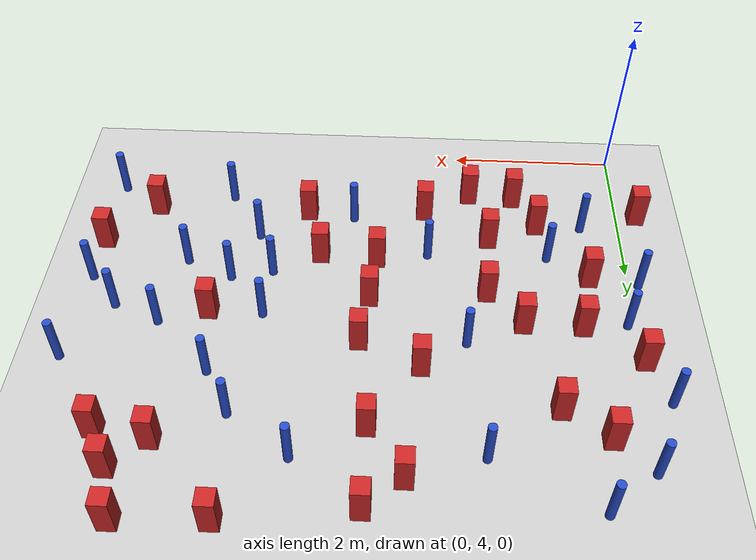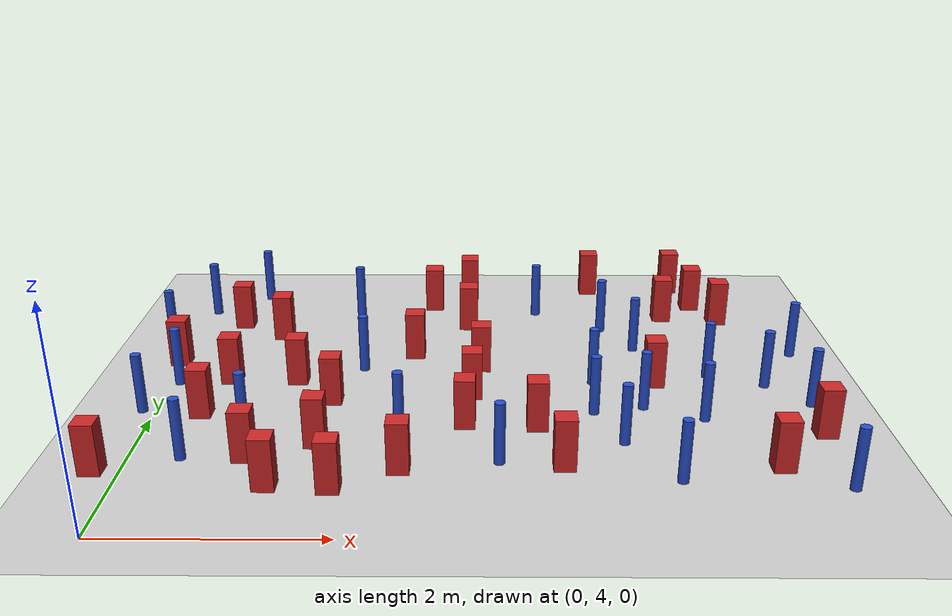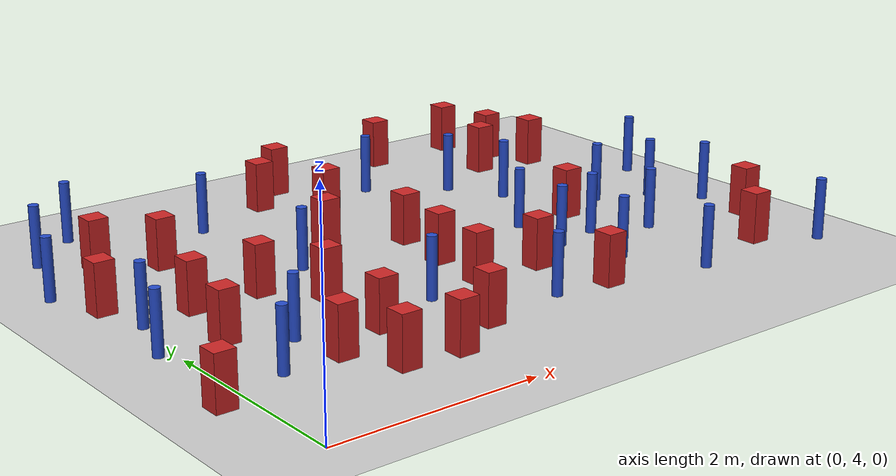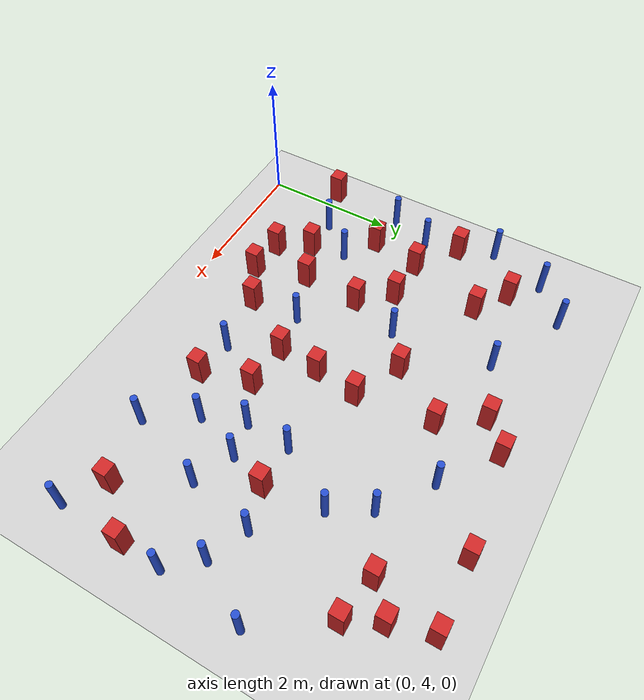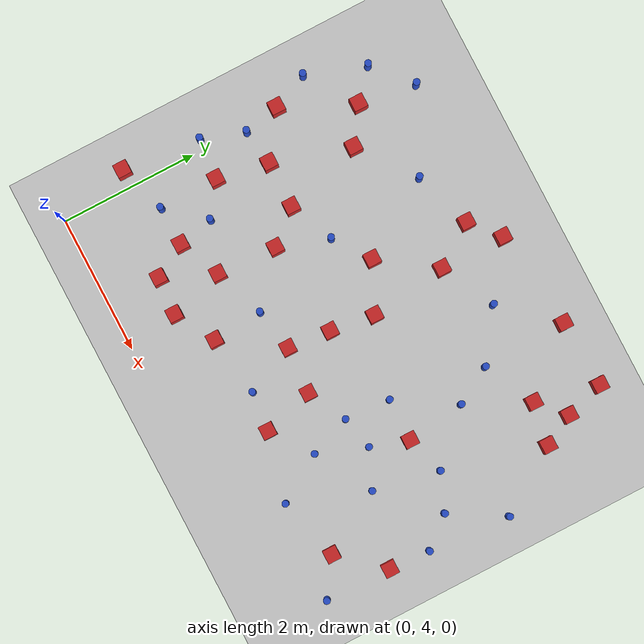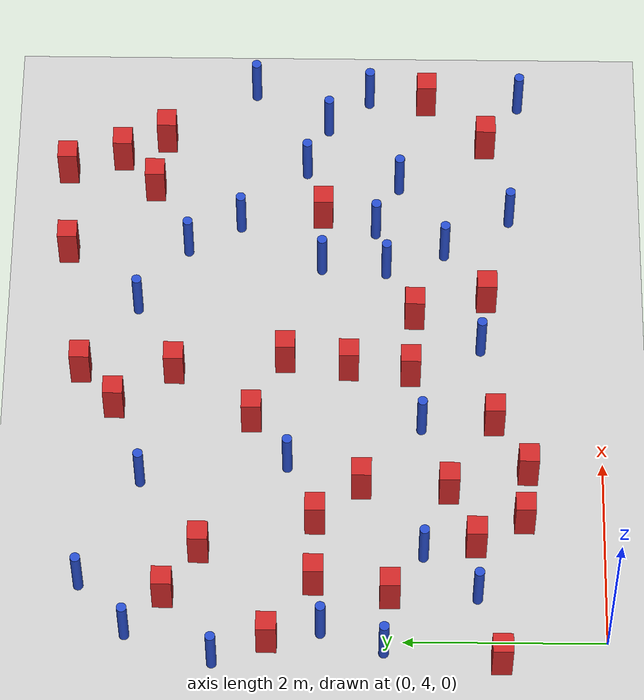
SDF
<sdf version="1.6">
 <world name="default">
  <model name="ground_plane">
   <static>1</static>
   <link name="link">
    <collision name="collision">
     <geometry><plane><normal>0 0 1</normal><size>100 100</size></plane></geometry>
     <surface><friction><ode><mu>100</mu><mu2>50</mu2></ode></friction></surface>
    </collision>
    <visual name="visual">
     <cast_shadows>0</cast_shadows>
     <geometry><plane><normal>0 0 1</normal><size>100 100</size></plane></geometry>
     <material>
      <ambient>1.0 1.0 1.0 1.0</ambient>
      <diffuse>0.8 0.8 0.8 1.0</diffuse>
      <specular>0.01 0.01 0.01 1.000000</specular>
     </material>
    </visual>
   </link>
  </model>
  <model name="square_post_obstacle0">
   <static>true</static>
   <pose>2.59690286933 8.90812959721 -4.36207812815e-07 3.75137919937e-06 9.77721102514e-07 2.47381364184e-05</pose>
   <link name="link">
    <pose>0 0 0.25 0 -0 0</pose>
    <inertial>
     <mass>100</mass>
     <inertia>
      <ixx>0.166667</ixx>
      <ixy>0</ixy>
      <ixz>0</ixz>
      <iyy>0.166667</iyy>
      <iyz>0</iyz>
      <izz>0.166667</izz>
     </inertia>
    </inertial>
    <collision name="collision"><geometry><box><size>.2 .2 .5</size></box></geometry></collision>
    <visual name="visual">
     <geometry><box><size>.2 .2 .5</size></box></geometry>
     <material>
      <script><name>Gazebo/Red</name><uri>file://media/materials/scripts/gazebo.material</uri></script>
     </material>
    </visual>
   </link>
  </model>
  <model name="pole_obstacle10">
   <static>true</static>
   <pose>4.79318812608 7.67508169887 -3.09024884793e-07 -7.19054271911e-07 -2.1131507516e-07 -1.93935509277e-07</pose>
   <link name="link">
    <pose>0 0 0.3 0 -0 0</pose>
    <inertial>
     <mass>1</mass>
     <inertia><ixx>0.145833</ixx><ixy>0</ixy><ixz>0</ixz><iyy>0.145833</iyy><iyz>0</iyz><izz>0.125</izz></inertia>
    </inertial>
    <collision name="collision">
     <geometry><cylinder><radius>0.05</radius><length>.6</length></cylinder></geometry>
    </collision>
    <visual name="visual">
     <geometry><cylinder><radius>0.05</radius><length>.6</length></cylinder></geometry>
     <material>
      <script><name>Gazebo/Blue</name><uri>file://media/materials/scripts/gazebo.material</uri></script>
     </material>
    </visual>
   </link>
  </model>
  <model name="pole_obstacle12">
   <static>true</static>
   <pose>1.75246085546 8.61980835545 -3.09024884793e-07 -7.19054271912e-07 -2.1131507515e-07 -1.93935509273e-07</pose>
   <link name="link">
    <pose>0 0 0.3 0 -0 0</pose>
    <inertial>
     <mass>1</mass>
     <inertia><ixx>0.145833</ixx><ixy>0</ixy><ixz>0</ixz><iyy>0.145833</iyy><iyz>0</iyz><izz>0.125</izz></inertia>
    </inertial>
    <collision name="collision">
     <geometry><cylinder><radius>0.05</radius><length>.6</length></cylinder></geometry>
    </collision>
    <visual name="visual">
     <geometry><cylinder><radius>0.05</radius><length>.6</length></cylinder></geometry>
     <material>
      <script><name>Gazebo/Blue</name><uri>file://media/materials/scripts/gazebo.material</uri></script>
     </material>
    </visual>
   </link>
  </model>
  <model name="pole_obstacle23">
   <static>true</static>
   <pose>1.93177337349 7.15243569661 -3.09024884793e-07 -7.19054271912e-07 -2.11315075134e-07 -1.93935509265e-07</pose>
   <link name="link">
    <pose>0 0 0.3 0 -0 0</pose>
    <inertial>
     <mass>1</mass>
     <inertia><ixx>0.145833</ixx><ixy>0</ixy><ixz>0</ixz><iyy>0.145833</iyy><iyz>0</iyz><izz>0.125</izz></inertia>
    </inertial>
    <collision name="collision">
     <geometry><cylinder><radius>0.05</radius><length>.6</length></cylinder></geometry>
    </collision>
    <visual name="visual">
     <geometry><cylinder><radius>0.05</radius><length>.6</length></cylinder></geometry>
     <material>
      <script><name>Gazebo/Blue</name><uri>file://media/materials/scripts/gazebo.material</uri></script>
     </material>
    </visual>
   </link>
  </model>
  <model name="square_post_obstacle18">
   <static>true</static>
   <pose>0.465041118365 6.12694422763 -4.36207812815e-07 3.75137919937e-06 9.77721102514e-07 2.47381364184e-05</pose>
   <link name="link">
    <pose>0 0 0.25 0 -0 0</pose>
    <inertial>
     <mass>100</mass>
     <inertia>
      <ixx>0.166667</ixx>
      <ixy>0</ixy>
      <ixz>0</ixz>
      <iyy>0.166667</iyy>
      <iyz>0</iyz>
      <izz>0.166667</izz>
     </inertia>
    </inertial>
    <collision name="collision"><geometry><box><size>.2 .2 .5</size></box></geometry></collision>
    <visual name="visual">
     <geometry><box><size>.2 .2 .5</size></box></geometry>
     <material>
      <script><name>Gazebo/Red</name><uri>file://media/materials/scripts/gazebo.material</uri></script>
     </material>
    </visual>
   </link>
  </model>
  <model name="pole_obstacle28">
   <static>true</static>
   <pose>-0.249616091385 7.8533554535 -3.09024884793e-07 -7.19054271912e-07 -2.11315075131e-07 -1.93935509264e-07</pose>
   <link name="link">
    <pose>0 0 0.3 0 -0 0</pose>
    <inertial>
     <mass>1</mass>
     <inertia><ixx>0.145833</ixx><ixy>0</ixy><ixz>0</ixz><iyy>0.145833</iyy><iyz>0</iyz><izz>0.125</izz></inertia>
    </inertial>
    <collision name="collision">
     <geometry><cylinder><radius>0.05</radius><length>.6</length></cylinder></geometry>
    </collision>
    <visual name="visual">
     <geometry><cylinder><radius>0.05</radius><length>.6</length></cylinder></geometry>
     <material>
      <script><name>Gazebo/Blue</name><uri>file://media/materials/scripts/gazebo.material</uri></script>
     </material>
    </visual>
   </link>
  </model>
  <model name="square_post_obstacle22">
   <static>true</static>
   <pose>3.01061490572 9.26128157257 -4.36207812815e-07 3.75137919937e-06 9.77721102514e-07 2.47381364184e-05</pose>
   <link name="link">
    <pose>0 0 0.25 0 -0 0</pose>
    <inertial>
     <mass>100</mass>
     <inertia>
      <ixx>0.166667</ixx>
      <ixy>0</ixy>
      <ixz>0</ixz>
      <iyy>0.166667</iyy>
      <iyz>0</iyz>
      <izz>0.166667</izz>
     </inertia>
    </inertial>
    <collision name="collision"><geometry><box><size>.2 .2 .5</size></box></geometry></collision>
    <visual name="visual">
     <geometry><box><size>.2 .2 .5</size></box></geometry>
     <material>
      <script><name>Gazebo/Red</name><uri>file://media/materials/scripts/gazebo.material</uri></script>
     </material>
    </visual>
   </link>
  </model>
  <model name="square_post_obstacle23">
   <static>true</static>
   <pose>-0.239136232068 5.04131277427 -4.36207812815e-07 3.75137919937e-06 9.77721102514e-07 2.47381364184e-05</pose>
   <link name="link">
    <pose>0 0 0.25 0 -0 0</pose>
    <inertial>
     <mass>100</mass>
     <inertia>
      <ixx>0.166667</ixx>
      <ixy>0</ixy>
      <ixz>0</ixz>
      <iyy>0.166667</iyy>
      <iyz>0</iyz>
      <izz>0.166667</izz>
     </inertia>
    </inertial>
    <collision name="collision"><geometry><box><size>.2 .2 .5</size></box></geometry></collision>
    <visual name="visual">
     <geometry><box><size>.2 .2 .5</size></box></geometry>
     <material>
      <script><name>Gazebo/Red</name><uri>file://media/materials/scripts/gazebo.material</uri></script>
     </material>
    </visual>
   </link>
  </model>
  <model name="square_post_obstacle24">
   <static>true</static>
   <pose>1.28586750141 6.87032121208 -4.36207812815e-07 3.75137919937e-06 9.77721102514e-07 2.47381364184e-05</pose>
   <link name="link">
    <pose>0 0 0.25 0 -0 0</pose>
    <inertial>
     <mass>100</mass>
     <inertia>
      <ixx>0.166667</ixx>
      <ixy>0</ixy>
      <ixz>0</ixz>
      <iyy>0.166667</iyy>
      <iyz>0</iyz>
      <izz>0.166667</izz>
     </inertia>
    </inertial>
    <collision name="collision"><geometry><box><size>.2 .2 .5</size></box></geometry></collision>
    <visual name="visual">
     <geometry><box><size>.2 .2 .5</size></box></geometry>
     <material>
      <script><name>Gazebo/Red</name><uri>file://media/materials/scripts/gazebo.material</uri></script>
     </material>
    </visual>
   </link>
  </model>
  <model name="pole_obstacle36">
   <static>true</static>
   <pose>5.47010037709 6.99825661843 -3.09024884793e-07 -7.19054271911e-07 -2.1131507516e-07 -1.93935509277e-07</pose>
   <link name="link">
    <pose>0 0 0.3 0 -0 0</pose>
    <inertial>
     <mass>1</mass>
     <inertia><ixx>0.145833</ixx><ixy>0</ixy><ixz>0</ixz><iyy>0.145833</iyy><iyz>0</iyz><izz>0.125</izz></inertia>
    </inertial>
    <collision name="collision">
     <geometry><cylinder><radius>0.05</radius><length>.6</length></cylinder></geometry>
    </collision>
    <visual name="visual">
     <geometry><cylinder><radius>0.05</radius><length>.6</length></cylinder></geometry>
     <material>
      <script><name>Gazebo/Blue</name><uri>file://media/materials/scripts/gazebo.material</uri></script>
     </material>
    </visual>
   </link>
  </model>
  <model name="square_post_obstacle31">
   <static>true</static>
   <pose>3.88257624322 5.14773019331 -4.36207812815e-07 3.75137919937e-06 9.77721102514e-07 2.47381364184e-05</pose>
   <link name="link">
    <pose>0 0 0.25 0 -0 0</pose>
    <inertial>
     <mass>100</mass>
     <inertia>
      <ixx>0.166667</ixx>
      <ixy>0</ixy>
      <ixz>0</ixz>
      <iyy>0.166667</iyy>
      <iyz>0</iyz>
      <izz>0.166667</izz>
     </inertia>
    </inertial>
    <collision name="collision"><geometry><box><size>.2 .2 .5</size></box></geometry></collision>
    <visual name="visual">
     <geometry><box><size>.2 .2 .5</size></box></geometry>
     <material>
      <script><name>Gazebo/Red</name><uri>file://media/materials/scripts/gazebo.material</uri></script>
     </material>
    </visual>
   </link>
  </model>
  <model name="square_post_obstacle39">
   <static>true</static>
   <pose>5.22579633937 8.57681700439 -4.36207812815e-07 3.75137919937e-06 9.77721102514e-07 2.47381364184e-05</pose>
   <link name="link">
    <pose>0 0 0.25 0 -0 0</pose>
    <inertial>
     <mass>100</mass>
     <inertia>
      <ixx>0.166667</ixx>
      <ixy>0</ixy>
      <ixz>0</ixz>
      <iyy>0.166667</iyy>
      <iyz>0</iyz>
      <izz>0.166667</izz>
     </inertia>
    </inertial>
    <collision name="collision"><geometry><box><size>.2 .2 .5</size></box></geometry></collision>
    <visual name="visual">
     <geometry><box><size>.2 .2 .5</size></box></geometry>
     <material>
      <script><name>Gazebo/Red</name><uri>file://media/materials/scripts/gazebo.material</uri></script>
     </material>
    </visual>
   </link>
  </model>
  <model name="pole_obstacle50">
   <static>true</static>
   <pose>0.473915840547 5.26440534672 -3.09024884793e-07 -7.19054271912e-07 -2.11315075128e-07 -1.9393550926e-07</pose>
   <link name="link">
    <pose>0 0 0.3 0 -0 0</pose>
    <inertial>
     <mass>1</mass>
     <inertia><ixx>0.145833</ixx><ixy>0</ixy><ixz>0</ixz><iyy>0.145833</iyy><iyz>0</iyz><izz>0.125</izz></inertia>
    </inertial>
    <collision name="collision">
     <geometry><cylinder><radius>0.05</radius><length>.6</length></cylinder></geometry>
    </collision>
    <visual name="visual">
     <geometry><cylinder><radius>0.05</radius><length>.6</length></cylinder></geometry>
     <material>
      <script><name>Gazebo/Blue</name><uri>file://media/materials/scripts/gazebo.material</uri></script>
     </material>
    </visual>
   </link>
  </model>
  <model name="pole_obstacle51">
   <static>true</static>
   <pose>0.58635771725 9.18341403361 -3.09024884793e-07 -7.19054271911e-07 -2.11315075158e-07 -1.93935509277e-07</pose>
   <link name="link">
    <pose>0 0 0.3 0 -0 0</pose>
    <inertial>
     <mass>1</mass>
     <inertia><ixx>0.145833</ixx><ixy>0</ixy><ixz>0</ixz><iyy>0.145833</iyy><iyz>0</iyz><izz>0.125</izz></inertia>
    </inertial>
    <collision name="collision">
     <geometry><cylinder><radius>0.05</radius><length>.6</length></cylinder></geometry>
    </collision>
    <visual name="visual">
     <geometry><cylinder><radius>0.05</radius><length>.6</length></cylinder></geometry>
     <material>
      <script><name>Gazebo/Blue</name><uri>file://media/materials/scripts/gazebo.material</uri></script>
     </material>
    </visual>
   </link>
  </model>
  <model name="square_post_obstacle43">
   <static>true</static>
   <pose>3.00421147811 8.31483494489 -4.36207812815e-07 3.75137919937e-06 9.77721102514e-07 2.47381364184e-05</pose>
   <link name="link">
    <pose>0 0 0.25 0 -0 0</pose>
    <inertial>
     <mass>100</mass>
     <inertia>
      <ixx>0.166667</ixx>
      <ixy>0</ixy>
      <ixz>0</ixz>
      <iyy>0.166667</iyy>
      <iyz>0</iyz>
      <izz>0.166667</izz>
     </inertia>
    </inertial>
    <collision name="collision"><geometry><box><size>.2 .2 .5</size></box></geometry></collision>
    <visual name="visual">
     <geometry><box><size>.2 .2 .5</size></box></geometry>
     <material>
      <script><name>Gazebo/Red</name><uri>file://media/materials/scripts/gazebo.material</uri></script>
     </material>
    </visual>
   </link>
  </model>
  <model name="pole_obstacle57">
   <static>true</static>
   <pose>0.932787360123 5.79484764104 -3.09024884793e-07 -7.19054271912e-07 -2.11315075129e-07 -1.93935509261e-07</pose>
   <link name="link">
    <pose>0 0 0.3 0 -0 0</pose>
    <inertial>
     <mass>1</mass>
     <inertia><ixx>0.145833</ixx><ixy>0</ixy><ixz>0</ixz><iyy>0.145833</iyy><iyz>0</iyz><izz>0.125</izz></inertia>
    </inertial>
    <collision name="collision">
     <geometry><cylinder><radius>0.05</radius><length>.6</length></cylinder></geometry>
    </collision>
    <visual name="visual">
     <geometry><cylinder><radius>0.05</radius><length>.6</length></cylinder></geometry>
     <material>
      <script><name>Gazebo/Blue</name><uri>file://media/materials/scripts/gazebo.material</uri></script>
     </material>
    </visual>
   </link>
  </model>
  <model name="square_post_obstacle44">
   <static>true</static>
   <pose>3.14680511482 7.19189590408 -4.36207812815e-07 3.75137919937e-06 9.77721102514e-07 2.47381364184e-05</pose>
   <link name="link">
    <pose>0 0 0.25 0 -0 0</pose>
    <inertial>
     <mass>100</mass>
     <inertia>
      <ixx>0.166667</ixx>
      <ixy>0</ixy>
      <ixz>0</ixz>
      <iyy>0.166667</iyy>
      <iyz>0</iyz>
      <izz>0.166667</izz>
     </inertia>
    </inertial>
    <collision name="collision"><geometry><box><size>.2 .2 .5</size></box></geometry></collision>
    <visual name="visual">
     <geometry><box><size>.2 .2 .5</size></box></geometry>
     <material>
      <script><name>Gazebo/Red</name><uri>file://media/materials/scripts/gazebo.material</uri></script>
     </material>
    </visual>
   </link>
  </model>
  <model name="pole_obstacle61">
   <static>true</static>
   <pose>4.23558222568 6.17096233819 -3.09024884793e-07 -7.19054271911e-07 -2.1131507516e-07 -1.93935509277e-07</pose>
   <link name="link">
    <pose>0 0 0.3 0 -0 0</pose>
    <inertial>
     <mass>1</mass>
     <inertia><ixx>0.145833</ixx><ixy>0</ixy><ixz>0</ixz><iyy>0.145833</iyy><iyz>0</iyz><izz>0.125</izz></inertia>
    </inertial>
    <collision name="collision">
     <geometry><cylinder><radius>0.05</radius><length>.6</length></cylinder></geometry>
    </collision>
    <visual name="visual">
     <geometry><cylinder><radius>0.05</radius><length>.6</length></cylinder></geometry>
     <material>
      <script><name>Gazebo/Blue</name><uri>file://media/materials/scripts/gazebo.material</uri></script>
     </material>
    </visual>
   </link>
  </model>
  <model name="pole_obstacle62">
   <static>true</static>
   <pose>-0.123834747399 6.18465258813 -3.09024884793e-07 -7.19054271912e-07 -2.11315075136e-07 -1.93935509266e-07</pose>
   <link name="link">
    <pose>0 0 0.3 0 -0 0</pose>
    <inertial>
     <mass>1</mass>
     <inertia><ixx>0.145833</ixx><ixy>0</ixy><ixz>0</ixz><iyy>0.145833</iyy><iyz>0</iyz><izz>0.125</izz></inertia>
    </inertial>
    <collision name="collision">
     <geometry><cylinder><radius>0.05</radius><length>.6</length></cylinder></geometry>
    </collision>
    <visual name="visual">
     <geometry><cylinder><radius>0.05</radius><length>.6</length></cylinder></geometry>
     <material>
      <script><name>Gazebo/Blue</name><uri>file://media/materials/scripts/gazebo.material</uri></script>
     </material>
    </visual>
   </link>
  </model>
  <model name="square_post_obstacle48">
   <static>true</static>
   <pose>2.44587616517 7.52039390079 -4.36207812815e-07 3.75137919937e-06 9.77721102514e-07 2.47381364184e-05</pose>
   <link name="link">
    <pose>0 0 0.25 0 -0 0</pose>
    <inertial>
     <mass>100</mass>
     <inertia>
      <ixx>0.166667</ixx>
      <ixy>0</ixy>
      <ixz>0</ixz>
      <iyy>0.166667</iyy>
      <iyz>0</iyz>
      <izz>0.166667</izz>
     </inertia>
    </inertial>
    <collision name="collision"><geometry><box><size>.2 .2 .5</size></box></geometry></collision>
    <visual name="visual">
     <geometry><box><size>.2 .2 .5</size></box></geometry>
     <material>
      <script><name>Gazebo/Red</name><uri>file://media/materials/scripts/gazebo.material</uri></script>
     </material>
    </visual>
   </link>
  </model>
  <model name="square_post_obstacle55">
   <static>true</static>
   <pose>2.4294161062 5.08168607545 -4.36207812815e-07 3.75137919937e-06 9.77721102514e-07 2.47381364184e-05</pose>
   <link name="link">
    <pose>0 0 0.25 0 -0 0</pose>
    <inertial>
     <mass>100</mass>
     <inertia>
      <ixx>0.166667</ixx>
      <ixy>0</ixy>
      <ixz>0</ixz>
      <iyy>0.166667</iyy>
      <iyz>0</iyz>
      <izz>0.166667</izz>
     </inertia>
    </inertial>
    <collision name="collision"><geometry><box><size>.2 .2 .5</size></box></geometry></collision>
    <visual name="visual">
     <geometry><box><size>.2 .2 .5</size></box></geometry>
     <material>
      <script><name>Gazebo/Red</name><uri>file://media/materials/scripts/gazebo.material</uri></script>
     </material>
    </visual>
   </link>
  </model>
  <model name="square_post_obstacle75">
   <static>true</static>
   <pose>0.954266377457 8.01305552024 -4.36207812815e-07 3.75137919937e-06 9.77721102514e-07 2.47381364184e-05</pose>
   <link name="link">
    <pose>0 0 0.25 0 -0 0</pose>
    <inertial>
     <mass>100</mass>
     <inertia>
      <ixx>0.166667</ixx>
      <ixy>0</ixy>
      <ixz>0</ixz>
      <iyy>0.166667</iyy>
      <iyz>0</iyz>
      <izz>0.166667</izz>
     </inertia>
    </inertial>
    <collision name="collision"><geometry><box><size>.2 .2 .5</size></box></geometry></collision>
    <visual name="visual">
     <geometry><box><size>.2 .2 .5</size></box></geometry>
     <material>
      <script><name>Gazebo/Red</name><uri>file://media/materials/scripts/gazebo.material</uri></script>
     </material>
    </visual>
   </link>
  </model>
  <model name="square_post_obstacle89">
   <static>true</static>
   <pose>5.61100202644 8.92521061113 -4.36207812815e-07 3.75137919937e-06 9.77721102514e-07 2.47381364184e-05</pose>
   <link name="link">
    <pose>0 0 0.25 0 -0 0</pose>
    <inertial>
     <mass>100</mass>
     <inertia>
      <ixx>0.166667</ixx>
      <ixy>0</ixy>
      <ixz>0</ixz>
      <iyy>0.166667</iyy>
      <iyz>0</iyz>
      <izz>0.166667</izz>
     </inertia>
    </inertial>
    <collision name="collision"><geometry><box><size>.2 .2 .5</size></box></geometry></collision>
    <visual name="visual">
     <geometry><box><size>.2 .2 .5</size></box></geometry>
     <material>
      <script><name>Gazebo/Red</name><uri>file://media/materials/scripts/gazebo.material</uri></script>
     </material>
    </visual>
   </link>
  </model>
  <model name="square_post_obstacle98">
   <static>true</static>
   <pose>4.89997530262 6.82535952826 -4.36207812815e-07 3.75137919937e-06 9.77721102514e-07 2.47381364184e-05</pose>
   <link name="link">
    <pose>0 0 0.25 0 -0 0</pose>
    <inertial>
     <mass>100</mass>
     <inertia>
      <ixx>0.166667</ixx>
      <ixy>0</ixy>
      <ixz>0</ixz>
      <iyy>0.166667</iyy>
      <iyz>0</iyz>
      <izz>0.166667</izz>
     </inertia>
    </inertial>
    <collision name="collision"><geometry><box><size>.2 .2 .5</size></box></geometry></collision>
    <visual name="visual">
     <geometry><box><size>.2 .2 .5</size></box></geometry>
     <material>
      <script><name>Gazebo/Red</name><uri>file://media/materials/scripts/gazebo.material</uri></script>
     </material>
    </visual>
   </link>
  </model>
  <model name="pole_obstacle109">
   <static>true</static>
   <pose>0.0476532672508 8.71279853325 -3.09024884793e-07 -7.19054271911e-07 -2.11315075164e-07 -1.93935509281e-07</pose>
   <link name="link">
    <pose>0 0 0.3 0 -0 0</pose>
    <inertial>
     <mass>1</mass>
     <inertia><ixx>0.145833</ixx><ixy>0</ixy><ixz>0</ixz><iyy>0.145833</iyy><iyz>0</iyz><izz>0.125</izz></inertia>
    </inertial>
    <collision name="collision">
     <geometry><cylinder><radius>0.05</radius><length>.6</length></cylinder></geometry>
    </collision>
    <visual name="visual">
     <geometry><cylinder><radius>0.05</radius><length>.6</length></cylinder></geometry>
     <material>
      <script><name>Gazebo/Blue</name><uri>file://media/materials/scripts/gazebo.material</uri></script>
     </material>
    </visual>
   </link>
  </model>
  <model name="square_post_obstacle104">
   <static>true</static>
   <pose>-0.0257377416972 7.32480765166 -4.36207812815e-07 3.75137919937e-06 9.77721102514e-07 2.47381364184e-05</pose>
   <link name="link">
    <pose>0 0 0.25 0 -0 0</pose>
    <inertial>
     <mass>100</mass>
     <inertia>
      <ixx>0.166667</ixx>
      <ixy>0</ixy>
      <ixz>0</ixz>
      <iyy>0.166667</iyy>
      <iyz>0</iyz>
      <izz>0.166667</izz>
     </inertia>
    </inertial>
    <collision name="collision"><geometry><box><size>.2 .2 .5</size></box></geometry></collision>
    <visual name="visual">
     <geometry><box><size>.2 .2 .5</size></box></geometry>
     <material>
      <script><name>Gazebo/Red</name><uri>file://media/materials/scripts/gazebo.material</uri></script>
     </material>
    </visual>
   </link>
  </model>
  <model name="square_post_obstacle106">
   <static>true</static>
   <pose>1.68522854239 6.41351499844 -4.36207812815e-07 3.75137919937e-06 9.77721102514e-07 2.47381364184e-05</pose>
   <link name="link">
    <pose>0 0 0.25 0 -0 0</pose>
    <inertial>
     <mass>100</mass>
     <inertia>
      <ixx>0.166667</ixx>
      <ixy>0</ixy>
      <ixz>0</ixz>
      <iyy>0.166667</iyy>
      <iyz>0</iyz>
      <izz>0.166667</izz>
     </inertia>
    </inertial>
    <collision name="collision"><geometry><box><size>.2 .2 .5</size></box></geometry></collision>
    <visual name="visual">
     <geometry><box><size>.2 .2 .5</size></box></geometry>
     <material>
      <script><name>Gazebo/Red</name><uri>file://media/materials/scripts/gazebo.material</uri></script>
     </material>
    </visual>
   </link>
  </model>
  <model name="square_post_obstacle109">
   <static>true</static>
   <pose>1.04014354175 5.27679808773 -4.36207812815e-07 3.75137919937e-06 9.77721102514e-07 2.47381364184e-05</pose>
   <link name="link">
    <pose>0 0 0.25 0 -0 0</pose>
    <inertial>
     <mass>100</mass>
     <inertia>
      <ixx>0.166667</ixx>
      <ixy>0</ixy>
      <ixz>0</ixz>
      <iyy>0.166667</iyy>
      <iyz>0</iyz>
      <izz>0.166667</izz>
     </inertia>
    </inertial>
    <collision name="collision"><geometry><box><size>.2 .2 .5</size></box></geometry></collision>
    <visual name="visual">
     <geometry><box><size>.2 .2 .5</size></box></geometry>
     <material>
      <script><name>Gazebo/Red</name><uri>file://media/materials/scripts/gazebo.material</uri></script>
     </material>
    </visual>
   </link>
  </model>
  <model name="pole_obstacle114">
   <static>true</static>
   <pose>6.0162057834 6.77703532767 -3.09024884793e-07 -7.19054271911e-07 -2.1131507516e-07 -1.93935509277e-07</pose>
   <link name="link">
    <pose>0 0 0.3 0 -0 0</pose>
    <inertial>
     <mass>1</mass>
     <inertia><ixx>0.145833</ixx><ixy>0</ixy><ixz>0</ixz><iyy>0.145833</iyy><iyz>0</iyz><izz>0.125</izz></inertia>
    </inertial>
    <collision name="collision">
     <geometry><cylinder><radius>0.05</radius><length>.6</length></cylinder></geometry>
    </collision>
    <visual name="visual">
     <geometry><cylinder><radius>0.05</radius><length>.6</length></cylinder></geometry>
     <material>
      <script><name>Gazebo/Blue</name><uri>file://media/materials/scripts/gazebo.material</uri></script>
     </material>
    </visual>
   </link>
  </model>
  <model name="square_post_obstacle111">
   <static>true</static>
   <pose>5.79541285729 5.14105935171 -4.36207812815e-07 3.75137919937e-06 9.77721102514e-07 2.47381364184e-05</pose>
   <link name="link">
    <pose>0 0 0.25 0 -0 0</pose>
    <inertial>
     <mass>100</mass>
     <inertia>
      <ixx>0.166667</ixx>
      <ixy>0</ixy>
      <ixz>0</ixz>
      <iyy>0.166667</iyy>
      <iyz>0</iyz>
      <izz>0.166667</izz>
     </inertia>
    </inertial>
    <collision name="collision"><geometry><box><size>.2 .2 .5</size></box></geometry></collision>
    <visual name="visual">
     <geometry><box><size>.2 .2 .5</size></box></geometry>
     <material>
      <script><name>Gazebo/Red</name><uri>file://media/materials/scripts/gazebo.material</uri></script>
     </material>
    </visual>
   </link>
  </model>
  <model name="pole_obstacle115">
   <static>true</static>
   <pose>3.78055749926 8.70881098041 -3.09024884848e-07 -7.19054271902e-07 -2.11315075199e-07 -1.93935509286e-07</pose>
   <link name="link">
    <pose>0 0 0.3 0 -0 0</pose>
    <inertial>
     <mass>1</mass>
     <inertia><ixx>0.145833</ixx><ixy>0</ixy><ixz>0</ixz><iyy>0.145833</iyy><iyz>0</iyz><izz>0.125</izz></inertia>
    </inertial>
    <collision name="collision">
     <geometry><cylinder><radius>0.05</radius><length>.6</length></cylinder></geometry>
    </collision>
    <visual name="visual">
     <geometry><cylinder><radius>0.05</radius><length>.6</length></cylinder></geometry>
     <material>
      <script><name>Gazebo/Blue</name><uri>file://media/materials/scripts/gazebo.material</uri></script>
     </material>
    </visual>
   </link>
  </model>
  <model name="square_post_obstacle117">
   <static>true</static>
   <pose>0.607172570469 6.87762513102 -4.36207812815e-07 3.75137919937e-06 9.77721102514e-07 2.47381364184e-05</pose>
   <link name="link">
    <pose>0 0 0.25 0 -0 0</pose>
    <inertial>
     <mass>100</mass>
     <inertia>
      <ixx>0.166667</ixx>
      <ixy>0</ixy>
      <ixz>0</ixz>
      <iyy>0.166667</iyy>
      <iyz>0</iyz>
      <izz>0.166667</izz>
     </inertia>
    </inertial>
    <collision name="collision"><geometry><box><size>.2 .2 .5</size></box></geometry></collision>
    <visual name="visual">
     <geometry><box><size>.2 .2 .5</size></box></geometry>
     <material>
      <script><name>Gazebo/Red</name><uri>file://media/materials/scripts/gazebo.material</uri></script>
     </material>
    </visual>
   </link>
  </model>
  <model name="pole_obstacle126">
   <static>true</static>
   <pose>3.31240678339 5.20786861226 -3.09024884793e-07 -7.19054271912e-07 -2.11315075134e-07 -1.93935509266e-07</pose>
   <link name="link">
    <pose>0 0 0.3 0 -0 0</pose>
    <inertial>
     <mass>1</mass>
     <inertia><ixx>0.145833</ixx><ixy>0</ixy><ixz>0</ixz><iyy>0.145833</iyy><iyz>0</iyz><izz>0.125</izz></inertia>
    </inertial>
    <collision name="collision">
     <geometry><cylinder><radius>0.05</radius><length>.6</length></cylinder></geometry>
    </collision>
    <visual name="visual">
     <geometry><cylinder><radius>0.05</radius><length>.6</length></cylinder></geometry>
     <material>
      <script><name>Gazebo/Blue</name><uri>file://media/materials/scripts/gazebo.material</uri></script>
     </material>
    </visual>
   </link>
  </model>
  <model name="square_post_obstacle123">
   <static>true</static>
   <pose>5.84351673307 8.47539659494 -4.36207812815e-07 3.75137919937e-06 9.77721102514e-07 2.47381364184e-05</pose>
   <link name="link">
    <pose>0 0 0.25 0 -0 0</pose>
    <inertial>
     <mass>100</mass>
     <inertia>
      <ixx>0.166667</ixx>
      <ixy>0</ixy>
      <ixz>0</ixz>
      <iyy>0.166667</iyy>
      <iyz>0</iyz>
      <izz>0.166667</izz>
     </inertia>
    </inertial>
    <collision name="collision"><geometry><box><size>.2 .2 .5</size></box></geometry></collision>
    <visual name="visual">
     <geometry><box><size>.2 .2 .5</size></box></geometry>
     <material>
      <script><name>Gazebo/Red</name><uri>file://media/materials/scripts/gazebo.material</uri></script>
     </material>
    </visual>
   </link>
  </model>
  <model name="square_post_obstacle138">
   <static>true</static>
   <pose>3.67700174521 5.88190297689 -4.36207812815e-07 3.75137919937e-06 9.77721102514e-07 2.47381364184e-05</pose>
   <link name="link">
    <pose>0 0 0.25 0 -0 0</pose>
    <inertial>
     <mass>100</mass>
     <inertia>
      <ixx>0.166667</ixx>
      <ixy>0</ixy>
      <ixz>0</ixz>
      <iyy>0.166667</iyy>
      <iyz>0</iyz>
      <izz>0.166667</izz>
     </inertia>
    </inertial>
    <collision name="collision"><geometry><box><size>.2 .2 .5</size></box></geometry></collision>
    <visual name="visual">
     <geometry><box><size>.2 .2 .5</size></box></geometry>
     <material>
      <script><name>Gazebo/Red</name><uri>file://media/materials/scripts/gazebo.material</uri></script>
     </material>
    </visual>
   </link>
  </model>
  <model name="pole_obstacle150">
   <static>true</static>
   <pose>6.46626099423 7.54618426966 -3.09024884793e-07 -7.19054271911e-07 -2.1131507516e-07 -1.93935509277e-07</pose>
   <link name="link">
    <pose>0 0 0.3 0 -0 0</pose>
    <inertial>
     <mass>1</mass>
     <inertia><ixx>0.145833</ixx><ixy>0</ixy><ixz>0</ixz><iyy>0.145833</iyy><iyz>0</iyz><izz>0.125</izz></inertia>
    </inertial>
    <collision name="collision">
     <geometry><cylinder><radius>0.05</radius><length>.6</length></cylinder></geometry>
    </collision>
    <visual name="visual">
     <geometry><cylinder><radius>0.05</radius><length>.6</length></cylinder></geometry>
     <material>
      <script><name>Gazebo/Blue</name><uri>file://media/materials/scripts/gazebo.material</uri></script>
     </material>
    </visual>
   </link>
  </model>
  <model name="square_post_obstacle145">
   <static>true</static>
   <pose>1.31082259307 4.79564220122 -4.36207812815e-07 3.75137919937e-06 9.77721102514e-07 2.47381364184e-05</pose>
   <link name="link">
    <pose>0 0 0.25 0 -0 0</pose>
    <inertial>
     <mass>100</mass>
     <inertia>
      <ixx>0.166667</ixx>
      <ixy>0</ixy>
      <ixz>0</ixz>
      <iyy>0.166667</iyy>
      <iyz>0</iyz>
      <izz>0.166667</izz>
     </inertia>
    </inertial>
    <collision name="collision"><geometry><box><size>.2 .2 .5</size></box></geometry></collision>
    <visual name="visual">
     <geometry><box><size>.2 .2 .5</size></box></geometry>
     <material>
      <script><name>Gazebo/Red</name><uri>file://media/materials/scripts/gazebo.material</uri></script>
     </material>
    </visual>
   </link>
  </model>
  <model name="square_post_obstacle153">
   <static>true</static>
   <pose>4.45154949961 9.44885692256 -4.36207812815e-07 3.75137919937e-06 9.77721102514e-07 2.47381364184e-05</pose>
   <link name="link">
    <pose>0 0 0.25 0 -0 0</pose>
    <inertial>
     <mass>100</mass>
     <inertia>
      <ixx>0.166667</ixx>
      <ixy>0</ixy>
      <ixz>0</ixz>
      <iyy>0.166667</iyy>
      <iyz>0</iyz>
      <izz>0.166667</izz>
     </inertia>
    </inertial>
    <collision name="collision"><geometry><box><size>.2 .2 .5</size></box></geometry></collision>
    <visual name="visual">
     <geometry><box><size>.2 .2 .5</size></box></geometry>
     <material>
      <script><name>Gazebo/Red</name><uri>file://media/materials/scripts/gazebo.material</uri></script>
     </material>
    </visual>
   </link>
  </model>
  <model name="square_post_obstacle159">
   <static>true</static>
   <pose>6.34121702347 5.75676569525 -4.36207812815e-07 3.75137919937e-06 9.77721102514e-07 2.47381364184e-05</pose>
   <link name="link">
    <pose>0 0 0.25 0 -0 0</pose>
    <inertial>
     <mass>100</mass>
     <inertia>
      <ixx>0.166667</ixx>
      <ixy>0</ixy>
      <ixz>0</ixz>
      <iyy>0.166667</iyy>
      <iyz>0</iyz>
      <izz>0.166667</izz>
     </inertia>
    </inertial>
    <collision name="collision"><geometry><box><size>.2 .2 .5</size></box></geometry></collision>
    <visual name="visual">
     <geometry><box><size>.2 .2 .5</size></box></geometry>
     <material>
      <script><name>Gazebo/Red</name><uri>file://media/materials/scripts/gazebo.material</uri></script>
     </material>
    </visual>
   </link>
  </model>
  <model name="square_post_obstacle161">
   <static>true</static>
   <pose>3.05692492769 6.54722384675 -4.36207812815e-07 3.75137919937e-06 9.77721102514e-07 2.47381364184e-05</pose>
   <link name="link">
    <pose>0 0 0.25 0 -0 0</pose>
    <inertial>
     <mass>100</mass>
     <inertia>
      <ixx>0.166667</ixx>
      <ixy>0</ixy>
      <ixz>0</ixz>
      <iyy>0.166667</iyy>
      <iyz>0</iyz>
      <izz>0.166667</izz>
     </inertia>
    </inertial>
    <collision name="collision"><geometry><box><size>.2 .2 .5</size></box></geometry></collision>
    <visual name="visual">
     <geometry><box><size>.2 .2 .5</size></box></geometry>
     <material>
      <script><name>Gazebo/Red</name><uri>file://media/materials/scripts/gazebo.material</uri></script>
     </material>
    </visual>
   </link>
  </model>
  <model name="square_post_obstacle162">
   <static>true</static>
   <pose>1.86131322135 4.75376440835 -4.36207812815e-07 3.75137919937e-06 9.77721102514e-07 2.47381364184e-05</pose>
   <link name="link">
    <pose>0 0 0.25 0 -0 0</pose>
    <inertial>
     <mass>100</mass>
     <inertia>
      <ixx>0.166667</ixx>
      <ixy>0</ixy>
      <ixz>0</ixz>
      <iyy>0.166667</iyy>
      <iyz>0</iyz>
      <izz>0.166667</izz>
     </inertia>
    </inertial>
    <collision name="collision"><geometry><box><size>.2 .2 .5</size></box></geometry></collision>
    <visual name="visual">
     <geometry><box><size>.2 .2 .5</size></box></geometry>
     <material>
      <script><name>Gazebo/Red</name><uri>file://media/materials/scripts/gazebo.material</uri></script>
     </material>
    </visual>
   </link>
  </model>
  <model name="square_post_obstacle166">
   <static>true</static>
   <pose>0.455313613481 8.34993230075 -4.36207812815e-07 3.75137919937e-06 9.77721102514e-07 2.47381364184e-05</pose>
   <link name="link">
    <pose>0 0 0.25 0 -0 0</pose>
    <inertial>
     <mass>100</mass>
     <inertia>
      <ixx>0.166667</ixx>
      <ixy>0</ixy>
      <ixz>0</ixz>
      <iyy>0.166667</iyy>
      <iyz>0</iyz>
      <izz>0.166667</izz>
     </inertia>
    </inertial>
    <collision name="collision"><geometry><box><size>.2 .2 .5</size></box></geometry></collision>
    <visual name="visual">
     <geometry><box><size>.2 .2 .5</size></box></geometry>
     <material>
      <script><name>Gazebo/Red</name><uri>file://media/materials/scripts/gazebo.material</uri></script>
     </material>
    </visual>
   </link>
  </model>
  <model name="pole_obstacle169">
   <static>true</static>
   <pose>5.28075665101 6.03858371541 -3.09024884793e-07 -7.19054271911e-07 -2.1131507516e-07 -1.93935509277e-07</pose>
   <link name="link">
    <pose>0 0 0.3 0 -0 0</pose>
    <inertial>
     <mass>1</mass>
     <inertia><ixx>0.145833</ixx><ixy>0</ixy><ixz>0</ixz><iyy>0.145833</iyy><iyz>0</iyz><izz>0.125</izz></inertia>
    </inertial>
    <collision name="collision">
     <geometry><cylinder><radius>0.05</radius><length>.6</length></cylinder></geometry>
    </collision>
    <visual name="visual">
     <geometry><cylinder><radius>0.05</radius><length>.6</length></cylinder></geometry>
     <material>
      <script><name>Gazebo/Blue</name><uri>file://media/materials/scripts/gazebo.material</uri></script>
     </material>
    </visual>
   </link>
  </model>
  <model name="pole_obstacle174">
   <static>true</static>
   <pose>6.32295643971 4.78870618528 -3.09024884793e-07 -7.19054271911e-07 -2.1131507516e-07 -1.93935509277e-07</pose>
   <link name="link">
    <pose>0 0 0.3 0 -0 0</pose>
    <inertial>
     <mass>1</mass>
     <inertia><ixx>0.145833</ixx><ixy>0</ixy><ixz>0</ixz><iyy>0.145833</iyy><iyz>0</iyz><izz>0.125</izz></inertia>
    </inertial>
    <collision name="collision">
     <geometry><cylinder><radius>0.05</radius><length>.6</length></cylinder></geometry>
    </collision>
    <visual name="visual">
     <geometry><cylinder><radius>0.05</radius><length>.6</length></cylinder></geometry>
     <material>
      <script><name>Gazebo/Blue</name><uri>file://media/materials/scripts/gazebo.material</uri></script>
     </material>
    </visual>
   </link>
  </model>
  <model name="pole_obstacle177">
   <static>true</static>
   <pose>4.27945692363 6.83213841958 -3.09024884793e-07 -7.19054271911e-07 -2.1131507516e-07 -1.93935509277e-07</pose>
   <link name="link">
    <pose>0 0 0.3 0 -0 0</pose>
    <inertial>
     <mass>1</mass>
     <inertia><ixx>0.145833</ixx><ixy>0</ixy><ixz>0</ixz><iyy>0.145833</iyy><iyz>0</iyz><izz>0.125</izz></inertia>
    </inertial>
    <collision name="collision">
     <geometry><cylinder><radius>0.05</radius><length>.6</length></cylinder></geometry>
    </collision>
    <visual name="visual">
     <geometry><cylinder><radius>0.05</radius><length>.6</length></cylinder></geometry>
     <material>
      <script><name>Gazebo/Blue</name><uri>file://media/materials/scripts/gazebo.material</uri></script>
     </material>
    </visual>
   </link>
  </model>
  <model name="square_post_obstacle182">
   <static>true</static>
   <pose>5.43761477849 9.49180638455 -4.36207812815e-07 3.75137919937e-06 9.77721102514e-07 2.47381364184e-05</pose>
   <link name="link">
    <pose>0 0 0.25 0 -0 0</pose>
    <inertial>
     <mass>100</mass>
     <inertia>
      <ixx>0.166667</ixx>
      <ixy>0</ixy>
      <ixz>0</ixz>
      <iyy>0.166667</iyy>
      <iyz>0</iyz>
      <izz>0.166667</izz>
     </inertia>
    </inertial>
    <collision name="collision"><geometry><box><size>.2 .2 .5</size></box></geometry></collision>
    <visual name="visual">
     <geometry><box><size>.2 .2 .5</size></box></geometry>
     <material>
      <script><name>Gazebo/Red</name><uri>file://media/materials/scripts/gazebo.material</uri></script>
     </material>
    </visual>
   </link>
  </model>
  <model name="pole_obstacle186">
   <static>true</static>
   <pose>4.46192634675 5.57217719231 -3.09024884793e-07 -7.19054271911e-07 -2.1131507516e-07 -1.93935509277e-07</pose>
   <link name="link">
    <pose>0 0 0.3 0 -0 0</pose>
    <inertial>
     <mass>1</mass>
     <inertia><ixx>0.145833</ixx><ixy>0</ixy><ixz>0</ixz><iyy>0.145833</iyy><iyz>0</iyz><izz>0.125</izz></inertia>
    </inertial>
    <collision name="collision">
     <geometry><cylinder><radius>0.05</radius><length>.6</length></cylinder></geometry>
    </collision>
    <visual name="visual">
     <geometry><cylinder><radius>0.05</radius><length>.6</length></cylinder></geometry>
     <material>
      <script><name>Gazebo/Blue</name><uri>file://media/materials/scripts/gazebo.material</uri></script>
     </material>
    </visual>
   </link>
  </model>
  <model name="pole_obstacle191">
   <static>true</static>
   <pose>4.48928590327 8.21145327081 -3.09024884793e-07 -7.19054271912e-07 -2.1131507513e-07 -1.93935509261e-07</pose>
   <link name="link">
    <pose>0 0 0.3 0 -0 0</pose>
    <inertial>
     <mass>1</mass>
     <inertia><ixx>0.145833</ixx><ixy>0</ixy><ixz>0</ixz><iyy>0.145833</iyy><iyz>0</iyz><izz>0.125</izz></inertia>
    </inertial>
    <collision name="collision">
     <geometry><cylinder><radius>0.05</radius><length>.6</length></cylinder></geometry>
    </collision>
    <visual name="visual">
     <geometry><cylinder><radius>0.05</radius><length>.6</length></cylinder></geometry>
     <material>
      <script><name>Gazebo/Blue</name><uri>file://media/materials/scripts/gazebo.material</uri></script>
     </material>
    </visual>
   </link>
  </model>
  <model name="pole_obstacle192">
   <static>true</static>
   <pose>4.88291124585 4.90009106735 -3.09024884793e-07 -7.19054271911e-07 -2.1131507516e-07 -1.93935509277e-07</pose>
   <link name="link">
    <pose>0 0 0.3 0 -0 0</pose>
    <inertial>
     <mass>1</mass>
     <inertia><ixx>0.145833</ixx><ixy>0</ixy><ixz>0</ixz><iyy>0.145833</iyy><iyz>0</iyz><izz>0.125</izz></inertia>
    </inertial>
    <collision name="collision">
     <geometry><cylinder><radius>0.05</radius><length>.6</length></cylinder></geometry>
    </collision>
    <visual name="visual">
     <geometry><cylinder><radius>0.05</radius><length>.6</length></cylinder></geometry>
     <material>
      <script><name>Gazebo/Blue</name><uri>file://media/materials/scripts/gazebo.material</uri></script>
     </material>
    </visual>
   </link>
  </model>
  <model name="square_post_obstacle205">
   <static>true</static>
   <pose>1.64064670005 5.54132848713 -4.36207812815e-07 3.75137919937e-06 9.77721102514e-07 2.47381364184e-05</pose>
   <link name="link">
    <pose>0 0 0.25 0 -0 0</pose>
    <inertial>
     <mass>100</mass>
     <inertia>
      <ixx>0.166667</ixx>
      <ixy>0</ixy>
      <ixz>0</ixz>
      <iyy>0.166667</iyy>
      <iyz>0</iyz>
      <izz>0.166667</izz>
     </inertia>
    </inertial>
    <collision name="collision"><geometry><box><size>.2 .2 .5</size></box></geometry></collision>
    <visual name="visual">
     <geometry><box><size>.2 .2 .5</size></box></geometry>
     <material>
      <script><name>Gazebo/Red</name><uri>file://media/materials/scripts/gazebo.material</uri></script>
     </material>
    </visual>
   </link>
  </model>
  <model name="pole_obstacle195">
   <static>true</static>
   <pose>2.38243115449 5.81078828297 -3.09024884793e-07 -7.19054271912e-07 -2.11315075134e-07 -1.93935509266e-07</pose>
   <link name="link">
    <pose>0 0 0.3 0 -0 0</pose>
    <inertial>
     <mass>1</mass>
     <inertia><ixx>0.145833</ixx><ixy>0</ixy><ixz>0</ixz><iyy>0.145833</iyy><iyz>0</iyz><izz>0.125</izz></inertia>
    </inertial>
    <collision name="collision">
     <geometry><cylinder><radius>0.05</radius><length>.6</length></cylinder></geometry>
    </collision>
    <visual name="visual">
     <geometry><cylinder><radius>0.05</radius><length>.6</length></cylinder></geometry>
     <material>
      <script><name>Gazebo/Blue</name><uri>file://media/materials/scripts/gazebo.material</uri></script>
     </material>
    </visual>
   </link>
  </model>
  <model name="pole_obstacle199">
   <static>true</static>
   <pose>4.7254140433 6.27972959505 -3.09024884793e-07 -7.19054271911e-07 -2.1131507516e-07 -1.93935509277e-07</pose>
   <link name="link">
    <pose>0 0 0.3 0 -0 0</pose>
    <inertial>
     <mass>1</mass>
     <inertia><ixx>0.145833</ixx><ixy>0</ixy><ixz>0</ixz><iyy>0.145833</iyy><iyz>0</iyz><izz>0.125</izz></inertia>
    </inertial>
    <collision name="collision">
     <geometry><cylinder><radius>0.05</radius><length>.6</length></cylinder></geometry>
    </collision>
    <visual name="visual">
     <geometry><cylinder><radius>0.05</radius><length>.6</length></cylinder></geometry>
     <material>
      <script><name>Gazebo/Blue</name><uri>file://media/materials/scripts/gazebo.material</uri></script>
     </material>
    </visual>
   </link>
  </model>
  <model name="pole_obstacle205">
   <static>true</static>
   <pose>0.0837109233037 6.80253691825 -3.09024884793e-07 -7.19054271912e-07 -2.11315075132e-07 -1.93935509264e-07</pose>
   <link name="link">
    <pose>0 0 0.3 0 -0 0</pose>
    <inertial>
     <mass>1</mass>
     <inertia><ixx>0.145833</ixx><ixy>0</ixy><ixz>0</ixz><iyy>0.145833</iyy><iyz>0</iyz><izz>0.125</izz></inertia>
    </inertial>
    <collision name="collision">
     <geometry><cylinder><radius>0.05</radius><length>.6</length></cylinder></geometry>
    </collision>
    <visual name="visual">
     <geometry><cylinder><radius>0.05</radius><length>.6</length></cylinder></geometry>
     <material>
      <script><name>Gazebo/Blue</name><uri>file://media/materials/scripts/gazebo.material</uri></script>
     </material>
    </visual>
   </link>
  </model>
  <model name="pole_obstacle210">
   <static>true</static>
   <pose>6.37655183891 6.35223148031 -3.09024884793e-07 -7.19054271911e-07 -2.1131507516e-07 -1.93935509277e-07</pose>
   <link name="link">
    <pose>0 0 0.3 0 -0 0</pose>
    <inertial>
     <mass>1</mass>
     <inertia><ixx>0.145833</ixx><ixy>0</ixy><ixz>0</ixz><iyy>0.145833</iyy><iyz>0</iyz><izz>0.125</izz></inertia>
    </inertial>
    <collision name="collision">
     <geometry><cylinder><radius>0.05</radius><length>.6</length></cylinder></geometry>
    </collision>
    <visual name="visual">
     <geometry><cylinder><radius>0.05</radius><length>.6</length></cylinder></geometry>
     <material>
      <script><name>Gazebo/Blue</name><uri>file://media/materials/scripts/gazebo.material</uri></script>
     </material>
    </visual>
   </link>
  </model>
  <model name="square_post_obstacle207">
   <static>true</static>
   <pose>2.99605516417 5.92313035427 -4.36207812815e-07 3.75137919937e-06 9.77721102514e-07 2.47381364184e-05</pose>
   <link name="link">
    <pose>0 0 0.25 0 -0 0</pose>
    <inertial>
     <mass>100</mass>
     <inertia>
      <ixx>0.166667</ixx>
      <ixy>0</ixy>
      <ixz>0</ixz>
      <iyy>0.166667</iyy>
      <iyz>0</iyz>
      <izz>0.166667</izz>
     </inertia>
    </inertial>
    <collision name="collision"><geometry><box><size>.2 .2 .5</size></box></geometry></collision>
    <visual name="visual">
     <geometry><box><size>.2 .2 .5</size></box></geometry>
     <material>
      <script><name>Gazebo/Red</name><uri>file://media/materials/scripts/gazebo.material</uri></script>
     </material>
    </visual>
   </link>
  </model>
 </world>
</sdf>
